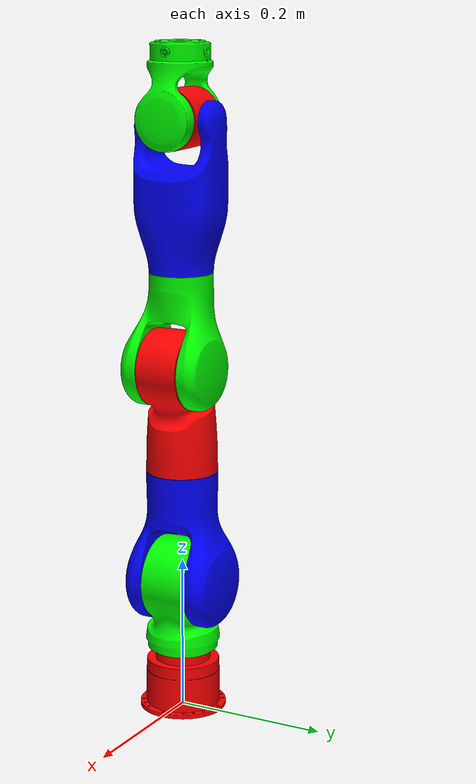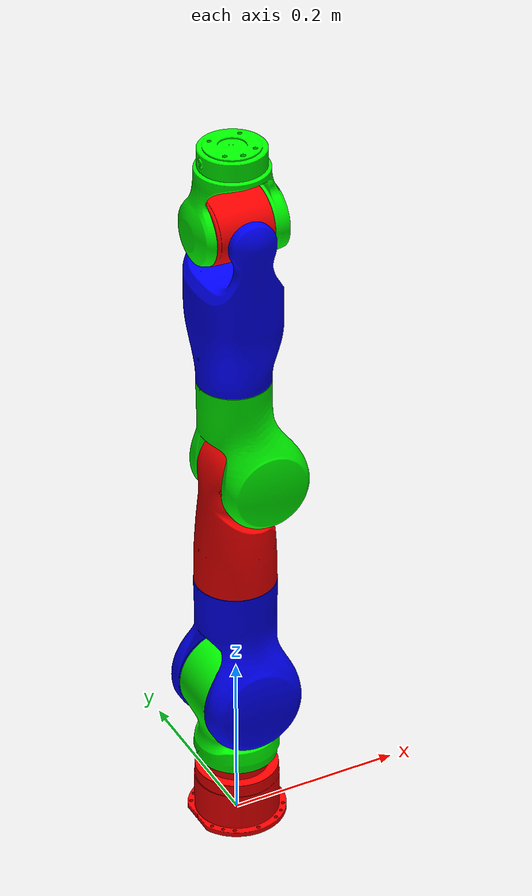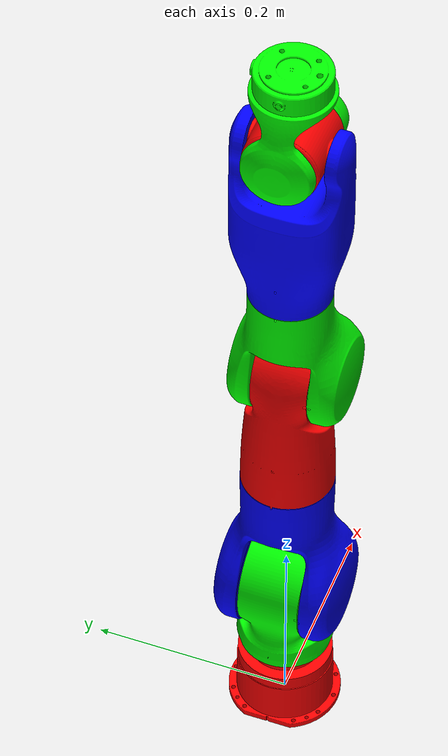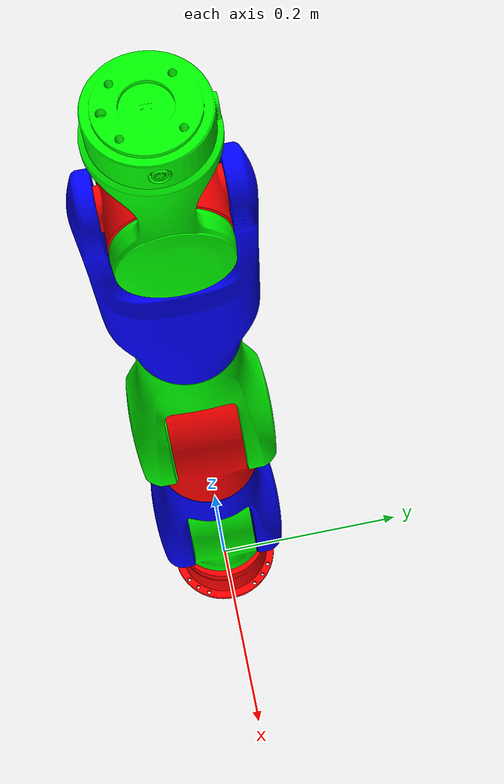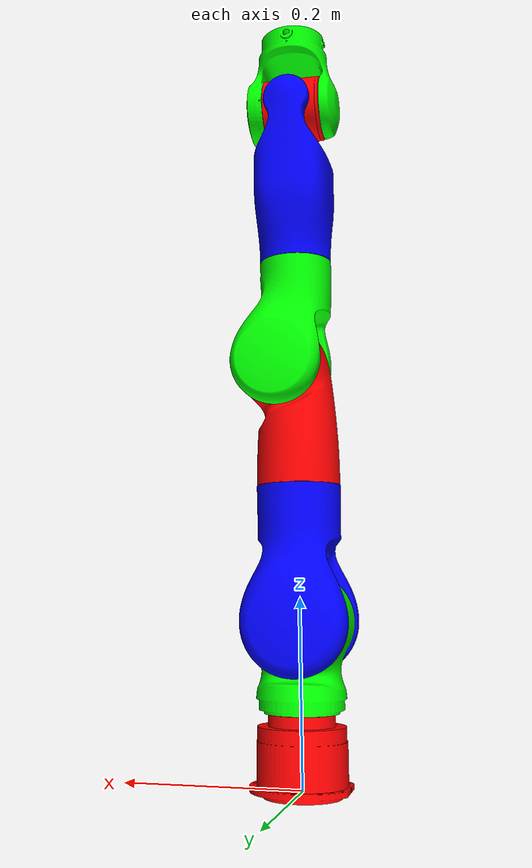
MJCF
<mujoco model="Marvin M6-S-R-CCS-696-V4.0 urdf">
  <compiler angle="radian" autolimits="true"/>

  <option timestep="0.002" gravity="0 0 -9.81" iterations="50" tolerance="1e-10">
    <flag contact="disable"/>
  </option>

  <default>
    <geom contype="1" conaffinity="1" friction="1 0.005 0.0001"/>
    <joint damping="0.01" armature="0.001"/>
  </default>

  <asset>
    <mesh name="Base_R" content_type="model/stl" file="meshes/Base_R.STL"/>
    <mesh name="Link1_R" content_type="model/stl" file="meshes/Link1_R.STL"/>
    <mesh name="Link2_R" content_type="model/stl" file="meshes/Link2_R.STL"/>
    <mesh name="Link3_R" content_type="model/stl" file="meshes/Link3_R.STL"/>
    <mesh name="Link4_R" content_type="model/stl" file="meshes/Link4_R.STL"/>
    <mesh name="Link5_R" content_type="model/stl" file="meshes/Link5_R.STL"/>
    <mesh name="Link6_R" content_type="model/stl" file="meshes/Link6_R.STL"/>
    <mesh name="Link7_R" content_type="model/stl" file="meshes/Link7_R.STL"/>
  </asset>

  <worldbody>
    <geom type="mesh" contype="0" conaffinity="0" group="1" density="0" rgba="1 0 0 1" mesh="Base_R"/>
    <body name="Link1_R" gravcomp="1" pos="0 0 0.1745">
      <inertial pos="2.347e-05 0.0055715 -0.03076" quat="0.711599 0.0343691 -0.0341702 0.700912" mass="1.9705" diaginertia="0.00529754 0.00492285 0.00184874"/>
      <joint name="Joint1_R" pos="0 0 0" axis="0 0 1" range="-3.1067 3.1067" actuatorfrcrange="-108 108"/>
      <geom type="mesh" contype="0" conaffinity="0" group="1" density="0" rgba="0 1 0 1" mesh="Link1_R"/>
      <body name="Link2_R" gravcomp="1" quat="0.707105 0.707108 0 0">
        <inertial pos="0.00013483 0.0617046 0.00950639" quat="0.643375 0.765551 -3.57328e-05 0.000294349" mass="2.24398" diaginertia="0.0119493 0.0112156 0.00338374"/>
        <joint name="Joint2_R" pos="0 0 0" axis="0 0 1" range="-2.0944 2.0944" actuatorfrcrange="-108 108"/>
        <geom type="mesh" contype="0" conaffinity="0" group="1" density="0" rgba="0 0 1 1" mesh="Link2_R"/>
        <body name="Link3_R" gravcomp="1" pos="0 0.287 0" quat="0.707105 -0.707108 0 0">
          <inertial pos="0.00968562 0.00246599 -0.046273" quat="0.782446 -0.0355285 -0.0735516 0.617337" mass="1.9242" diaginertia="0.00765215 0.00730789 0.0016338"/>
          <joint name="Joint3_R" pos="0 0 0" axis="0 0 1" range="-3.1067 3.1067" actuatorfrcrange="-66 66"/>
          <geom type="mesh" contype="0" conaffinity="0" group="1" density="0" rgba="1 0 0 1" mesh="Link3_R"/>
          <body name="Link4_R" gravcomp="1" pos="0.018 0 0" quat="-2.59734e-06 2.59735e-06 -0.707108 0.707105">
            <inertial pos="0.00850411 -0.0471822 0.00941509" quat="0.741754 0.628694 0.0774999 -0.220317" mass="1.6085" diaginertia="0.00603244 0.00535875 0.00198228"/>
            <joint name="Joint4_R" pos="0 0 0" axis="0 0 1" range="-2.5307 1.0472" actuatorfrcrange="-66 66"/>
            <geom type="mesh" contype="0" conaffinity="0" group="1" density="0" rgba="0 1 0 1" mesh="Link4_R"/>
            <body name="Link5_R" gravcomp="1" pos="0.018 -0.314 0" quat="-2.59734e-06 2.59735e-06 -0.707108 0.707105">
              <inertial pos="-0.00051127 -0.00101064 -0.112717" quat="0.999438 0.00995046 0.00675781 0.0312997" mass="2.0883" diaginertia="0.00626924 0.00564262 0.00243436"/>
              <joint name="Joint5_R" pos="0 0 0" axis="0 0 1" range="-3.1067 3.1067" actuatorfrcrange="-18 18"/>
              <geom type="mesh" contype="0" conaffinity="0" group="1" density="0" rgba="0 0 1 1" mesh="Link5_R"/>
              <body name="Link6_R" gravcomp="1" quat="0.499998 0.5 -0.5 0.500002">
                <inertial pos="0.00032659 -0.00531336 0.00030182" quat="0.695472 -0.00407878 0.0225408 0.718188" mass="0.72496" diaginertia="0.000517351 0.000460362 0.000425057"/>
                <joint name="Joint6_R" pos="0 0 0" axis="0 0 1" range="-1.0472 1.0472" actuatorfrcrange="-18 18"/>
                <geom type="mesh" contype="0" conaffinity="0" group="1" density="0" rgba="1 0 0 1" mesh="Link6_R"/>
                <body name="Link7_R" gravcomp="1" quat="0.499998 0.5 -0.5 0.500002">
                  <inertial pos="-9.108e-05 -0.0315325 0.00889371" quat="0.84481 0.535026 0.00229584 -0.00609725" mass="0.68606" diaginertia="0.00173691 0.00153911 0.000745263"/>
                  <joint name="Joint7_R" pos="0 0 0" axis="0 0 1" range="-1.5708 1.5708" actuatorfrcrange="-18 18"/>
                  <geom type="mesh" contype="0" conaffinity="0" group="1" density="0" rgba="0 1 0 1" mesh="Link7_R"/>
                </body>
              </body>
            </body>
          </body>
        </body>
      </body>
    </body>
  </worldbody>

  <actuator>
    <position name="motor_Joint1_R" joint="Joint1_R" kp="5" kv="1"/>
    <position name="motor_Joint2_R" joint="Joint2_R" kp="5" kv="1"/>
    <position name="motor_Joint3_R" joint="Joint3_R" kp="5" kv="1"/>
    <position name="motor_Joint4_R" joint="Joint4_R" kp="5" kv="1"/>
    <position name="motor_Joint5_R" joint="Joint5_R" kp="5" kv="1"/>
    <position name="motor_Joint6_R" joint="Joint6_R" kp="5" kv="1"/>
    <position name="motor_Joint7_R" joint="Joint7_R" kp="5" kv="1"/>
  </actuator>
</mujoco>
